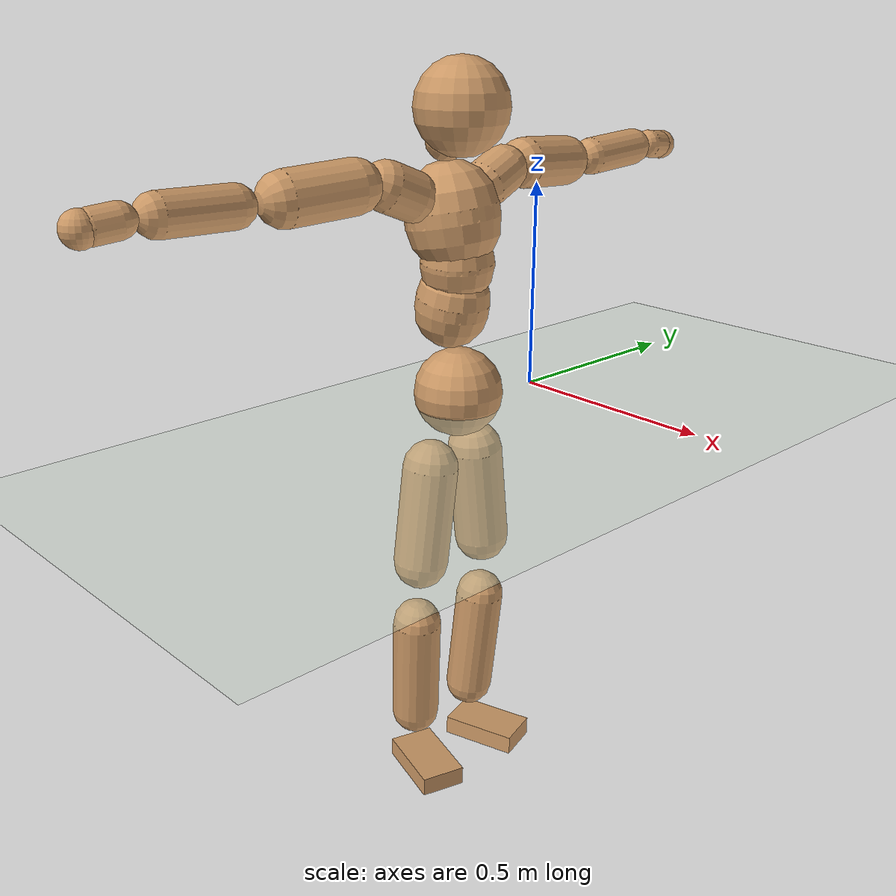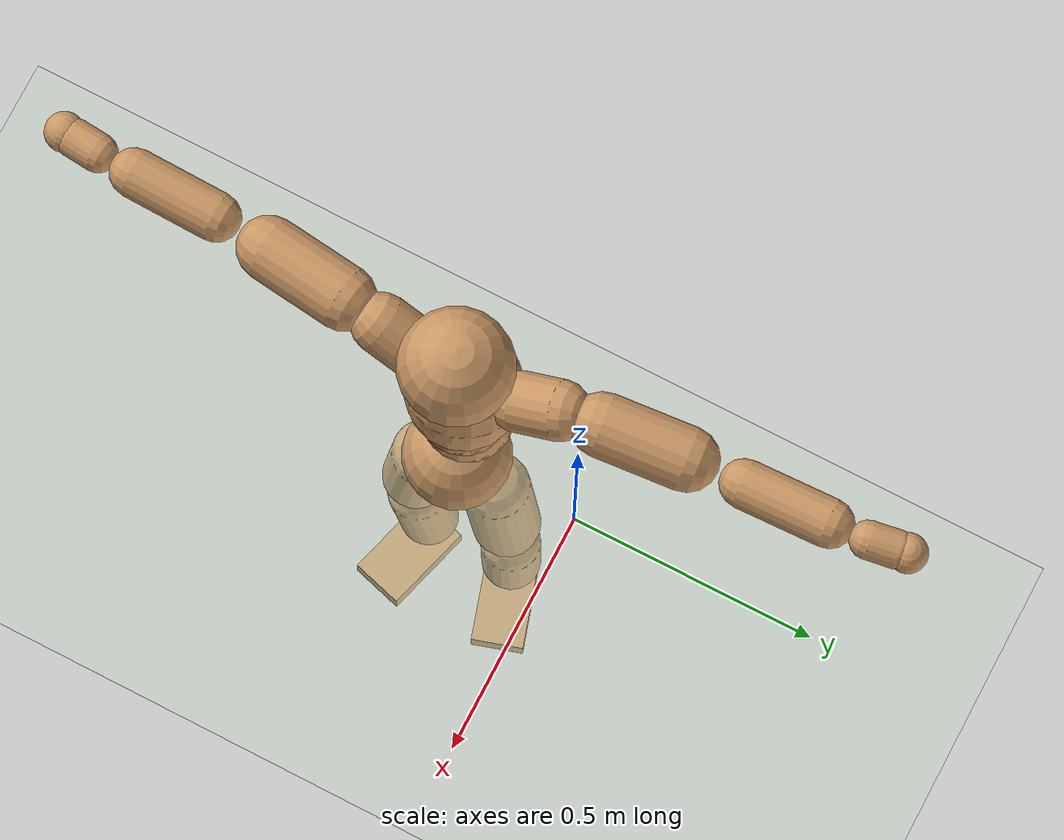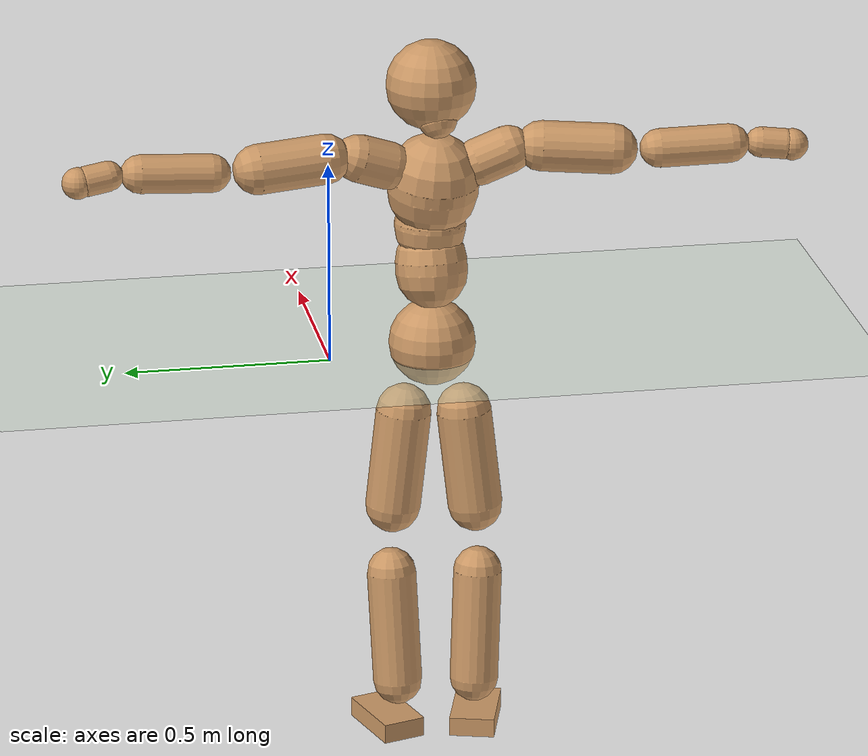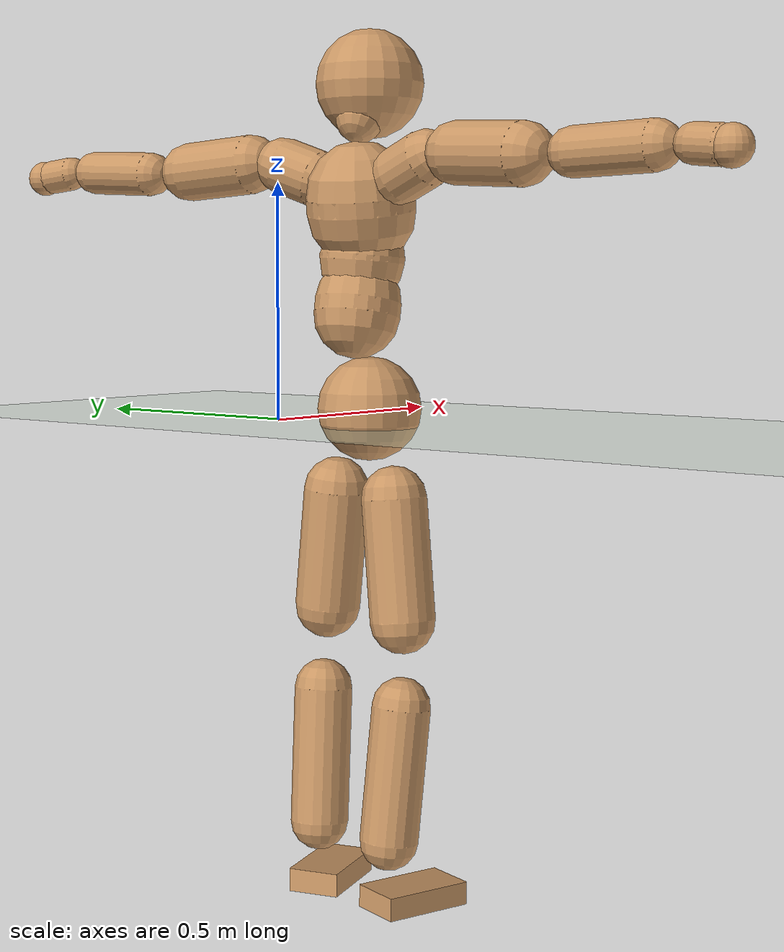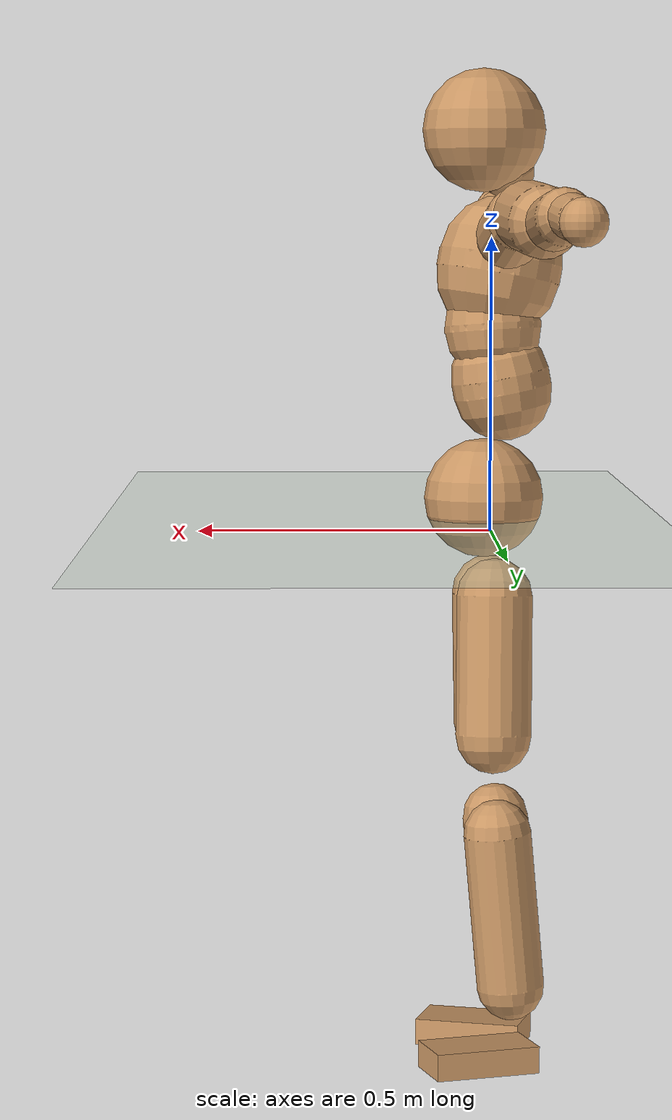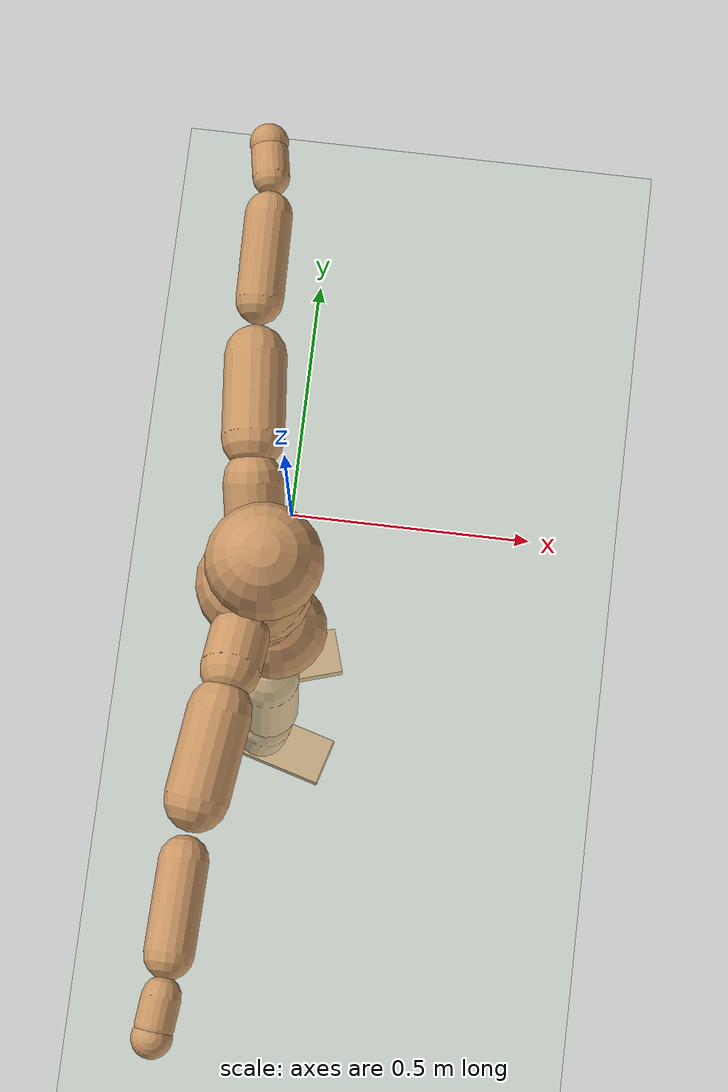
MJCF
<mujoco model="humanoid">
  <compiler coordinate="local"/>
  <default>
    <joint damping="0.0" armature="0.01" stiffness="0.0" limited="true"/>
    <geom conaffinity="1" condim="3" contype="7" margin="0.001" rgba="0.8 0.6 .4 1"/>
  </default>
  <asset>
    <texture type="skybox" builtin="gradient" rgb1=".4 .5 .6" rgb2="0 0 0" width="100" height="100"/>
    <texture builtin="flat" height="1278" mark="cross" markrgb="1 1 1" name="texgeom" random="0.01" rgb1="0.8 0.6 0.4" rgb2="0.8 0.6 0.4" type="cube" width="127"/>
    <texture builtin="checker" height="100" name="texplane" rgb1="0 0 0" rgb2="0.8 0.8 0.8" type="2d" width="100"/>
    <material name="MatPlane" reflectance="0.5" shininess="1" specular="1" texrepeat="60 60" texture="texplane"/>
    <material name="geom" texture="texgeom" texuniform="true"/>
  </asset>
  <worldbody>
    <light cutoff="100" diffuse="1 1 1" dir="-0 0 -1.3" directional="true" exponent="1" pos="0 0 1.3" specular=".1 .1 .1"/>
    <geom conaffinity="1" condim="3" name="floor" pos="0 0 0" rgba="0.8 0.9 0.8 1" size="100 100 .2" type="plane" material="MatPlane"/>
    <body name="Pelvis" pos="-0.0015 -0.2514 0.0353">
      <freejoint name="Pelvis"/>
      <geom type="sphere" contype="1" conaffinity="1" density="500" size="0.1066" pos="0.0000 0.0000 0.0000" name="Pelvis"/>
      <body name="L_Hip" pos="-0.0171 0.0647 -0.0877">
        <joint name="L_Hip_x" type="hinge" pos="0 0 0" axis="1 0 0" stiffness="800" damping="80" armature="0.02" range="-180.0000 180.0000"/>
        <joint name="L_Hip_y" type="hinge" pos="0 0 0" axis="0 1 0" stiffness="800" damping="80" armature="0.02" range="-180.0000 180.0000"/>
        <joint name="L_Hip_z" type="hinge" pos="0 0 0" axis="0 0 1" stiffness="800" damping="80" armature="0.02" range="-180.0000 180.0000"/>
        <geom type="capsule" contype="1" conaffinity="1" density="500" fromto="0.0008 0.0089 -0.0821 0.0033 0.0358 -0.3285" size="0.0677" name="L_Hip"/>
        <body name="L_Knee" pos="0.0041 0.0447 -0.4106">
          <joint name="L_Knee_x" type="hinge" pos="0 0 0" axis="1 0 0" stiffness="800" damping="80" armature="0.02" range="-180.0000 180.0000"/>
          <joint name="L_Knee_y" type="hinge" pos="0 0 0" axis="0 1 0" stiffness="800" damping="80" armature="0.02" range="-180.0000 180.0000"/>
          <joint name="L_Knee_z" type="hinge" pos="0 0 0" axis="0 0 1" stiffness="800" damping="80" armature="0.02" range="-180.0000 180.0000"/>
          <geom type="capsule" contype="1" conaffinity="1" density="500" fromto="-0.0084 -0.0034 -0.0933 -0.0337 -0.0138 -0.3731" size="0.0604" name="L_Knee"/>
          <body name="L_Ankle" pos="-0.0422 -0.0172 -0.4663">
            <joint name="L_Ankle_x" type="hinge" pos="0 0 0" axis="1 0 0" stiffness="800" damping="80" armature="0.02" range="-180.0000 180.0000"/>
            <joint name="L_Ankle_y" type="hinge" pos="0 0 0" axis="0 1 0" stiffness="800" damping="80" armature="0.02" range="-180.0000 180.0000"/>
            <joint name="L_Ankle_z" type="hinge" pos="0 0 0" axis="0 0 1" stiffness="800" damping="80" armature="0.02" range="-180.0000 180.0000"/>
            <geom type="box" contype="1" conaffinity="1" density="500" pos="0.0655 0.0200 -0.0323" size="0.0957 0.0539 0.0242" quat="0.9890 0.0000 0.0000 0.1477" name="L_Ankle"/>
            <body name="L_Toe" pos="0.1311 0.0401 -0.0647">
              <joint name="L_Toe_x" type="hinge" pos="0 0 0" axis="1 0 0" stiffness="500" damping="50" armature="0.02" range="-180.0000 180.0000"/>
              <joint name="L_Toe_y" type="hinge" pos="0 0 0" axis="0 1 0" stiffness="500" damping="50" armature="0.02" range="-180.0000 180.0000"/>
              <joint name="L_Toe_z" type="hinge" pos="0 0 0" axis="0 0 1" stiffness="500" damping="50" armature="0.02" range="-180.0000 180.0000"/>
              <geom type="box" contype="1" conaffinity="1" density="500" pos="0.0000 0.0000 0.0314" size="0.0011 0.0026 0.0012" quat="0.9883 0.0000 0.0000 0.1524" name="L_Toe"/>
            </body>
          </body>
        </body>
      </body>
      <body name="R_Hip" pos="-0.0125 -0.0669 -0.0963">
        <joint name="R_Hip_x" type="hinge" pos="0 0 0" axis="1 0 0" stiffness="800" damping="80" armature="0.02" range="-180.0000 180.0000"/>
        <joint name="R_Hip_y" type="hinge" pos="0 0 0" axis="0 1 0" stiffness="800" damping="80" armature="0.02" range="-180.0000 180.0000"/>
        <joint name="R_Hip_z" type="hinge" pos="0 0 0" axis="0 0 1" stiffness="800" damping="80" armature="0.02" range="-180.0000 180.0000"/>
        <geom type="capsule" contype="1" conaffinity="1" density="500" fromto="-0.0019 -0.0092 -0.0823 -0.0075 -0.0367 -0.3291" size="0.0672" name="R_Hip"/>
        <body name="R_Knee" pos="-0.0094 -0.0459 -0.4114">
          <joint name="R_Knee_x" type="hinge" pos="0 0 0" axis="1 0 0" stiffness="800" damping="80" armature="0.02" range="-180.0000 180.0000"/>
          <joint name="R_Knee_y" type="hinge" pos="0 0 0" axis="0 1 0" stiffness="800" damping="80" armature="0.02" range="-180.0000 180.0000"/>
          <joint name="R_Knee_z" type="hinge" pos="0 0 0" axis="0 0 1" stiffness="800" damping="80" armature="0.02" range="-180.0000 180.0000"/>
          <geom type="capsule" contype="1" conaffinity="1" density="500" fromto="-0.0077 0.0043 -0.0921 -0.0308 0.0172 -0.3685" size="0.0601" name="R_Knee"/>
          <body name="R_Ankle" pos="-0.0386 0.0215 -0.4606">
            <joint name="R_Ankle_x" type="hinge" pos="0 0 0" axis="1 0 0" stiffness="800" damping="80" armature="0.02" range="-180.0000 180.0000"/>
            <joint name="R_Ankle_y" type="hinge" pos="0 0 0" axis="0 1 0" stiffness="800" damping="80" armature="0.02" range="-180.0000 180.0000"/>
            <joint name="R_Ankle_z" type="hinge" pos="0 0 0" axis="0 0 1" stiffness="800" damping="80" armature="0.02" range="-180.0000 180.0000"/>
            <geom type="box" contype="1" conaffinity="1" density="500" pos="0.0697 -0.0199 -0.0336" size="0.0964 0.0558 0.0236" quat="0.9903 0.0000 0.0000 -0.1390" name="R_Ankle"/>
            <body name="R_Toe" pos="0.1393 -0.0399 -0.0673">
              <joint name="R_Toe_x" type="hinge" pos="0 0 0" axis="1 0 0" stiffness="500" damping="50" armature="0.02" range="-180.0000 180.0000"/>
              <joint name="R_Toe_y" type="hinge" pos="0 0 0" axis="0 1 0" stiffness="500" damping="50" armature="0.02" range="-180.0000 180.0000"/>
              <joint name="R_Toe_z" type="hinge" pos="0 0 0" axis="0 0 1" stiffness="500" damping="50" armature="0.02" range="-180.0000 180.0000"/>
              <geom type="box" contype="1" conaffinity="1" density="500" pos="0.0000 0.0000 0.0341" size="0.0012 0.0027 0.0012" quat="0.9914 0.0000 0.0000 -0.1306" name="R_Toe"/>
            </body>
          </body>
        </body>
      </body>
      <body name="Torso" pos="-0.044 0.005 0.1334">
        <joint name="Torso_x" type="hinge" pos="0 0 0" axis="1 0 0" stiffness="1000" damping="100" armature="0.02" range="-180.0000 180.0000"/>
        <joint name="Torso_y" type="hinge" pos="0 0 0" axis="0 1 0" stiffness="1000" damping="100" armature="0.02" range="-180.0000 180.0000"/>
        <joint name="Torso_z" type="hinge" pos="0 0 0" axis="0 0 1" stiffness="1000" damping="100" armature="0.02" range="-180.0000 180.0000"/>
        <geom type="capsule" contype="1" conaffinity="1" density="500" fromto="0.0165 0.0025 0.0854 0.0110 0.0017 0.0569" size="0.0878" name="Torso"/>
        <body name="Spine" pos="0.0275 0.0042 0.1423">
          <joint name="Spine_x" type="hinge" pos="0 0 0" axis="1 0 0" stiffness="1000" damping="100" armature="0.02" range="-180.0000 180.0000"/>
          <joint name="Spine_y" type="hinge" pos="0 0 0" axis="0 1 0" stiffness="1000" damping="100" armature="0.02" range="-180.0000 180.0000"/>
          <joint name="Spine_z" type="hinge" pos="0 0 0" axis="0 0 1" stiffness="1000" damping="100" armature="0.02" range="-180.0000 180.0000"/>
          <geom type="capsule" contype="1" conaffinity="1" density="500" fromto="0.0023 -0.0019 0.0350 0.0016 -0.0013 0.0233" size="0.0868" name="Spine"/>
          <body name="Chest" pos="0.0039 -0.0031 0.0583">
            <joint name="Chest_x" type="hinge" pos="0 0 0" axis="1 0 0" stiffness="1000" damping="100" armature="0.02" range="-180.0000 180.0000"/>
            <joint name="Chest_y" type="hinge" pos="0 0 0" axis="0 1 0" stiffness="1000" damping="100" armature="0.02" range="-180.0000 180.0000"/>
            <joint name="Chest_z" type="hinge" pos="0 0 0" axis="0 0 1" stiffness="1000" damping="100" armature="0.02" range="-180.0000 180.0000"/>
            <geom type="capsule" contype="1" conaffinity="1" density="500" fromto="-0.0164 -0.0050 0.0947 -0.0109 -0.0033 0.0631" size="0.1108" name="Chest"/>
            <body name="Neck" pos="-0.0382 -0.0142 0.2284">
              <joint name="Neck_x" type="hinge" pos="0 0 0" axis="1 0 0" stiffness="500" damping="50" armature="0.02" range="-180.0000 180.0000"/>
              <joint name="Neck_y" type="hinge" pos="0 0 0" axis="0 1 0" stiffness="500" damping="50" armature="0.02" range="-180.0000 180.0000"/>
              <joint name="Neck_z" type="hinge" pos="0 0 0" axis="0 0 1" stiffness="500" damping="50" armature="0.02" range="-180.0000 180.0000"/>
              <geom type="capsule" contype="1" conaffinity="1" density="500" fromto="0.0105 0.0020 0.0181 0.0419 0.0081 0.0724" size="0.0482" name="Neck"/>
              <body name="Head" pos="0.0524 0.0102 0.0905">
                <joint name="Head_x" type="hinge" pos="0 0 0" axis="1 0 0" stiffness="500" damping="50" armature="0.02" range="-180.0000 180.0000"/>
                <joint name="Head_y" type="hinge" pos="0 0 0" axis="0 1 0" stiffness="500" damping="50" armature="0.02" range="-180.0000 180.0000"/>
                <joint name="Head_z" type="hinge" pos="0 0 0" axis="0 0 1" stiffness="500" damping="50" armature="0.02" range="-180.0000 180.0000"/>
                <geom type="sphere" contype="1" conaffinity="1" density="500" size="0.1094" pos="0.0000 0.0000 0.0000" name="Head"/>
              </body>
            </body>
            <body name="L_Thorax" pos="-0.0193 0.0771 0.1233">
              <joint name="L_Thorax_x" type="hinge" pos="0 0 0" axis="1 0 0" stiffness="500" damping="50" armature="0.02" range="-180.0000 180.0000"/>
              <joint name="L_Thorax_y" type="hinge" pos="0 0 0" axis="0 1 0" stiffness="500" damping="50" armature="0.02" range="-180.0000 180.0000"/>
              <joint name="L_Thorax_z" type="hinge" pos="0 0 0" axis="0 0 1" stiffness="500" damping="50" armature="0.02" range="-180.0000 180.0000"/>
              <geom type="capsule" contype="1" conaffinity="1" density="500" fromto="-0.0044 0.0260 0.0095 -0.0176 0.1041 0.0379" size="0.0578" name="L_Thorax"/>
              <body name="L_Shoulder" pos="-0.022 0.1301 0.0474">
                <joint name="L_Shoulder_x" type="hinge" pos="0 0 0" axis="1 0 0" stiffness="500" damping="50" armature="0.02" range="-720.0000 720.0000"/>
                <joint name="L_Shoulder_y" type="hinge" pos="0 0 0" axis="0 1 0" stiffness="500" damping="50" armature="0.02" range="-720.0000 720.0000"/>
                <joint name="L_Shoulder_z" type="hinge" pos="0 0 0" axis="0 0 1" stiffness="500" damping="50" armature="0.02" range="-720.0000 720.0000"/>
                <geom type="capsule" contype="1" conaffinity="1" density="500" fromto="-0.0054 0.0547 -0.0037 -0.0217 0.2190 -0.0147" size="0.0609" name="L_Shoulder"/>
                <body name="L_Elbow" pos="-0.0272 0.2737 -0.0183">
                  <joint name="L_Elbow_x" type="hinge" pos="0 0 0" axis="1 0 0" stiffness="500" damping="50" armature="0.02" range="-720.0000 720.0000"/>
                  <joint name="L_Elbow_y" type="hinge" pos="0 0 0" axis="0 1 0" stiffness="500" damping="50" armature="0.02" range="-720.0000 720.0000"/>
                  <joint name="L_Elbow_z" type="hinge" pos="0 0 0" axis="0 0 1" stiffness="500" damping="50" armature="0.02" range="-720.0000 720.0000"/>
                  <geom type="capsule" contype="1" conaffinity="1" density="500" fromto="-0.0012 0.0571 0.0030 -0.0047 0.2283 0.0118" size="0.0464" name="L_Elbow"/>
                  <body name="L_Wrist" pos="-0.0059 0.2853 0.0148">
                    <joint name="L_Wrist_x" type="hinge" pos="0 0 0" axis="1 0 0" stiffness="300" damping="30" armature="0.02" range="-180.0000 180.0000"/>
                    <joint name="L_Wrist_y" type="hinge" pos="0 0 0" axis="0 1 0" stiffness="300" damping="30" armature="0.02" range="-180.0000 180.0000"/>
                    <joint name="L_Wrist_z" type="hinge" pos="0 0 0" axis="0 0 1" stiffness="300" damping="30" armature="0.02" range="-180.0000 180.0000"/>
                    <geom type="capsule" contype="1" conaffinity="1" density="500" fromto="-0.0033 0.0185 -0.0023 -0.0134 0.0740 -0.0091" size="0.0365" name="L_Wrist"/>
                    <body name="L_Hand" pos="-0.0167 0.0924 -0.0114">
                      <joint name="L_Hand_x" type="hinge" pos="0 0 0" axis="1 0 0" stiffness="300" damping="30" armature="0.02" range="-180.0000 180.0000"/>
                      <joint name="L_Hand_y" type="hinge" pos="0 0 0" axis="0 1 0" stiffness="300" damping="30" armature="0.02" range="-180.0000 180.0000"/>
                      <joint name="L_Hand_z" type="hinge" pos="0 0 0" axis="0 0 1" stiffness="300" damping="30" armature="0.02" range="-180.0000 180.0000"/>
                      <geom type="sphere" contype="1" conaffinity="1" density="500" size="0.0380" pos="0.0000 0.0000 0.0000" name="L_Hand"/>
                    </body>
                  </body>
                </body>
              </body>
            </body>
            <body name="R_Thorax" pos="-0.0244 -0.0878 0.1216">
              <joint name="R_Thorax_x" type="hinge" pos="0 0 0" axis="1 0 0" stiffness="500" damping="50" armature="0.02" range="-180.0000 180.0000"/>
              <joint name="R_Thorax_y" type="hinge" pos="0 0 0" axis="0 1 0" stiffness="500" damping="50" armature="0.02" range="-180.0000 180.0000"/>
              <joint name="R_Thorax_z" type="hinge" pos="0 0 0" axis="0 0 1" stiffness="500" damping="50" armature="0.02" range="-180.0000 180.0000"/>
              <geom type="capsule" contype="1" conaffinity="1" density="500" fromto="-0.0020 -0.0240 0.0100 -0.0080 -0.0959 0.0401" size="0.0577" name="R_Thorax"/>
              <body name="R_Shoulder" pos="-0.01 -0.1199 0.0502">
                <joint name="R_Shoulder_x" type="hinge" pos="0 0 0" axis="1 0 0" stiffness="500" damping="50" armature="0.02" range="-720.0000 720.0000"/>
                <joint name="R_Shoulder_y" type="hinge" pos="0 0 0" axis="0 1 0" stiffness="500" damping="50" armature="0.02" range="-720.0000 720.0000"/>
                <joint name="R_Shoulder_z" type="hinge" pos="0 0 0" axis="0 0 1" stiffness="500" damping="50" armature="0.02" range="-720.0000 720.0000"/>
                <geom type="capsule" contype="1" conaffinity="1" density="500" fromto="-0.0074 -0.0559 -0.0033 -0.0297 -0.2235 -0.0131" size="0.0616" name="R_Shoulder"/>
                <body name="R_Elbow" pos="-0.0371 -0.2793 -0.0164">
                  <joint name="R_Elbow_x" type="hinge" pos="0 0 0" axis="1 0 0" stiffness="500" damping="50" armature="0.02" range="-720.0000 720.0000"/>
                  <joint name="R_Elbow_y" type="hinge" pos="0 0 0" axis="0 1 0" stiffness="500" damping="50" armature="0.02" range="-720.0000 720.0000"/>
                  <joint name="R_Elbow_z" type="hinge" pos="0 0 0" axis="0 0 1" stiffness="500" damping="50" armature="0.02" range="-720.0000 720.0000"/>
                  <geom type="capsule" contype="1" conaffinity="1" density="500" fromto="-0.0013 -0.0575 0.0013 -0.0053 -0.2302 0.0051" size="0.0471" name="R_Elbow"/>
                  <body name="R_Wrist" pos="-0.0066 -0.2877 0.0064">
                    <joint name="R_Wrist_x" type="hinge" pos="0 0 0" axis="1 0 0" stiffness="300" damping="30" armature="0.02" range="-180.0000 180.0000"/>
                    <joint name="R_Wrist_y" type="hinge" pos="0 0 0" axis="0 1 0" stiffness="300" damping="30" armature="0.02" range="-180.0000 180.0000"/>
                    <joint name="R_Wrist_z" type="hinge" pos="0 0 0" axis="0 0 1" stiffness="300" damping="30" armature="0.02" range="-180.0000 180.0000"/>
                    <geom type="capsule" contype="1" conaffinity="1" density="500" fromto="-0.0021 -0.0189 -0.0019 -0.0085 -0.0757 -0.0074" size="0.0372" name="R_Wrist"/>
                    <body name="R_Hand" pos="-0.0106 -0.0946 -0.0093">
                      <joint name="R_Hand_x" type="hinge" pos="0 0 0" axis="1 0 0" stiffness="300" damping="30" armature="0.02" range="-180.0000 180.0000"/>
                      <joint name="R_Hand_y" type="hinge" pos="0 0 0" axis="0 1 0" stiffness="300" damping="30" armature="0.02" range="-180.0000 180.0000"/>
                      <joint name="R_Hand_z" type="hinge" pos="0 0 0" axis="0 0 1" stiffness="300" damping="30" armature="0.02" range="-180.0000 180.0000"/>
                      <geom type="sphere" contype="1" conaffinity="1" density="500" size="0.0385" pos="0.0000 0.0000 0.0000" name="R_Hand"/>
                    </body>
                  </body>
                </body>
              </body>
            </body>
          </body>
        </body>
      </body>
    </body>
  </worldbody>
  <actuator>
    <motor name="L_Hip_x" joint="L_Hip_x" gear="500"/>
    <motor name="L_Hip_y" joint="L_Hip_y" gear="500"/>
    <motor name="L_Hip_z" joint="L_Hip_z" gear="500"/>
    <motor name="L_Knee_x" joint="L_Knee_x" gear="500"/>
    <motor name="L_Knee_y" joint="L_Knee_y" gear="500"/>
    <motor name="L_Knee_z" joint="L_Knee_z" gear="500"/>
    <motor name="L_Ankle_x" joint="L_Ankle_x" gear="500"/>
    <motor name="L_Ankle_y" joint="L_Ankle_y" gear="500"/>
    <motor name="L_Ankle_z" joint="L_Ankle_z" gear="500"/>
    <motor name="L_Toe_x" joint="L_Toe_x" gear="500"/>
    <motor name="L_Toe_y" joint="L_Toe_y" gear="500"/>
    <motor name="L_Toe_z" joint="L_Toe_z" gear="500"/>
    <motor name="R_Hip_x" joint="R_Hip_x" gear="500"/>
    <motor name="R_Hip_y" joint="R_Hip_y" gear="500"/>
    <motor name="R_Hip_z" joint="R_Hip_z" gear="500"/>
    <motor name="R_Knee_x" joint="R_Knee_x" gear="500"/>
    <motor name="R_Knee_y" joint="R_Knee_y" gear="500"/>
    <motor name="R_Knee_z" joint="R_Knee_z" gear="500"/>
    <motor name="R_Ankle_x" joint="R_Ankle_x" gear="500"/>
    <motor name="R_Ankle_y" joint="R_Ankle_y" gear="500"/>
    <motor name="R_Ankle_z" joint="R_Ankle_z" gear="500"/>
    <motor name="R_Toe_x" joint="R_Toe_x" gear="500"/>
    <motor name="R_Toe_y" joint="R_Toe_y" gear="500"/>
    <motor name="R_Toe_z" joint="R_Toe_z" gear="500"/>
    <motor name="Torso_x" joint="Torso_x" gear="500"/>
    <motor name="Torso_y" joint="Torso_y" gear="500"/>
    <motor name="Torso_z" joint="Torso_z" gear="500"/>
    <motor name="Spine_x" joint="Spine_x" gear="500"/>
    <motor name="Spine_y" joint="Spine_y" gear="500"/>
    <motor name="Spine_z" joint="Spine_z" gear="500"/>
    <motor name="Chest_x" joint="Chest_x" gear="500"/>
    <motor name="Chest_y" joint="Chest_y" gear="500"/>
    <motor name="Chest_z" joint="Chest_z" gear="500"/>
    <motor name="Neck_x" joint="Neck_x" gear="500"/>
    <motor name="Neck_y" joint="Neck_y" gear="500"/>
    <motor name="Neck_z" joint="Neck_z" gear="500"/>
    <motor name="Head_x" joint="Head_x" gear="500"/>
    <motor name="Head_y" joint="Head_y" gear="500"/>
    <motor name="Head_z" joint="Head_z" gear="500"/>
    <motor name="L_Thorax_x" joint="L_Thorax_x" gear="500"/>
    <motor name="L_Thorax_y" joint="L_Thorax_y" gear="500"/>
    <motor name="L_Thorax_z" joint="L_Thorax_z" gear="500"/>
    <motor name="L_Shoulder_x" joint="L_Shoulder_x" gear="500"/>
    <motor name="L_Shoulder_y" joint="L_Shoulder_y" gear="500"/>
    <motor name="L_Shoulder_z" joint="L_Shoulder_z" gear="500"/>
    <motor name="L_Elbow_x" joint="L_Elbow_x" gear="500"/>
    <motor name="L_Elbow_y" joint="L_Elbow_y" gear="500"/>
    <motor name="L_Elbow_z" joint="L_Elbow_z" gear="500"/>
    <motor name="L_Wrist_x" joint="L_Wrist_x" gear="500"/>
    <motor name="L_Wrist_y" joint="L_Wrist_y" gear="500"/>
    <motor name="L_Wrist_z" joint="L_Wrist_z" gear="500"/>
    <motor name="L_Hand_x" joint="L_Hand_x" gear="500"/>
    <motor name="L_Hand_y" joint="L_Hand_y" gear="500"/>
    <motor name="L_Hand_z" joint="L_Hand_z" gear="500"/>
    <motor name="R_Thorax_x" joint="R_Thorax_x" gear="500"/>
    <motor name="R_Thorax_y" joint="R_Thorax_y" gear="500"/>
    <motor name="R_Thorax_z" joint="R_Thorax_z" gear="500"/>
    <motor name="R_Shoulder_x" joint="R_Shoulder_x" gear="500"/>
    <motor name="R_Shoulder_y" joint="R_Shoulder_y" gear="500"/>
    <motor name="R_Shoulder_z" joint="R_Shoulder_z" gear="500"/>
    <motor name="R_Elbow_x" joint="R_Elbow_x" gear="500"/>
    <motor name="R_Elbow_y" joint="R_Elbow_y" gear="500"/>
    <motor name="R_Elbow_z" joint="R_Elbow_z" gear="500"/>
    <motor name="R_Wrist_x" joint="R_Wrist_x" gear="500"/>
    <motor name="R_Wrist_y" joint="R_Wrist_y" gear="500"/>
    <motor name="R_Wrist_z" joint="R_Wrist_z" gear="500"/>
    <motor name="R_Hand_x" joint="R_Hand_x" gear="500"/>
    <motor name="R_Hand_y" joint="R_Hand_y" gear="500"/>
    <motor name="R_Hand_z" joint="R_Hand_z" gear="500"/>
  </actuator>
  <contact>
    <exclude body1="Torso" body2="Chest"/>
    <exclude body1="Head" body2="Chest"/>
    <exclude body1="R_Knee" body2="R_Toe"/>
    <exclude body1="R_Knee" body2="L_Ankle"/>
    <exclude body1="R_Knee" body2="L_Toe"/>
    <exclude body1="L_Knee" body2="L_Toe"/>
    <exclude body1="L_Knee" body2="R_Ankle"/>
    <exclude body1="L_Knee" body2="R_Toe"/>
    <exclude body1="L_Shoulder" body2="Chest"/>
    <exclude body1="R_Shoulder" body2="Chest"/>
  </contact>
  <sensor/>
  <size njmax="700" nconmax="700"/>
</mujoco>
